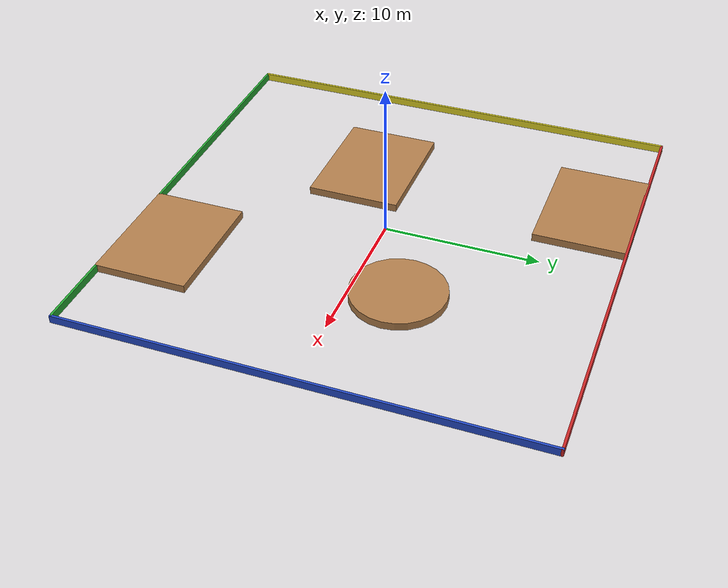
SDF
<?xml version='1.0'?>
<sdf version='1.6'>
  <model name='turtlebot3_square_large_2'>
    <pose frame=''>0 0 0 0 -0 0</pose>
    <link name='Wall_0'>
      <collision name='Wall_0_Collision'>
        <geometry>
          <box>
            <size>30 0.15 0.5</size>
          </box>
        </geometry>
        <pose frame=''>0 0 0.25 0 -0 0</pose>
      </collision>
      <visual name='Wall_0_Visual'>
        <pose frame=''>0 0 0.25 0 -0 0</pose>
        <geometry>
          <box>
            <size>30 0.15 0.5</size>
          </box>
        </geometry>
        <material>
          <script>
            <uri>file://media/materials/scripts/gazebo.material</uri>
            <name>Gazebo/Red</name>
          </script>
          <ambient>1 1 1 1</ambient>
        </material>
      </visual>
      <pose frame=''>0 14.925 0 0 -0 0</pose>
    </link>
    <link name='Wall_2'>
      <collision name='Wall_2_Collision'>
        <geometry>
          <box>
            <size>30 0.15 0.5</size>
          </box>
        </geometry>
        <pose frame=''>0 0 0.25 0 -0 0</pose>
      </collision>
      <visual name='Wall_2_Visual'>
        <pose frame=''>0 0 0.25 0 -0 0</pose>
        <geometry>
          <box>
            <size>30 0.15 0.5</size>
          </box>
        </geometry>
        <material>
          <script>
            <uri>file://media/materials/scripts/gazebo.material</uri>
            <name>Gazebo/Yellow</name>
          </script>
          <ambient>1 1 1 1</ambient>
        </material>
      </visual>
      <pose frame=''>-14.925 0 0 0 0 -1.5708</pose>
    </link>
    <link name='Wall_3'>
      <collision name='Wall_3_Collision'>
        <geometry>
          <box>
            <size>30 0.15 0.5</size>
          </box>
        </geometry>
        <pose frame=''>0 0 0.25 0 -0 0</pose>
      </collision>
      <visual name='Wall_3_Visual'>
        <pose frame=''>0 0 0.25 0 -0 0</pose>
        <geometry>
          <box>
            <size>30 0.15 0.5</size>
          </box>
        </geometry>
        <material>
          <script>
            <uri>file://media/materials/scripts/gazebo.material</uri>
            <name>Gazebo/Green</name>
          </script>
          <ambient>1 1 1 1</ambient>
        </material>
      </visual>
      <pose frame=''>0 -14.925 0 0 -0 0</pose>
    </link>
    <link name='Wall_4'>
      <collision name='Wall_4_Collision'>
        <geometry>
          <box>
            <size>30 0.15 0.5</size>
          </box>
        </geometry>
        <pose frame=''>0 0 0.25 0 -0 0</pose>
      </collision>
      <visual name='Wall_4_Visual'>
        <pose frame=''>0 0 0.25 0 -0 0</pose>
        <geometry>
          <box>
            <size>30 0.15 0.5</size>
          </box>
        </geometry>
        <material>
          <script>
            <uri>file://media/materials/scripts/gazebo.material</uri>
            <name>Gazebo/Blue</name>
          </script>
          <ambient>1 1 1 1</ambient>
        </material>
      </visual>
      <pose frame=''>14.925 0 0 0 -0 1.5708</pose>
    </link>

    <link name='box_0'>
      <collision name='Wall_0_Collision'>
        <geometry>
          <box>
            <size>8 6  0.5</size>
          </box>
        </geometry>
        <pose frame=''>0 0 0.25 0 -0 0</pose>
      </collision>
      <visual name='Wall_0_Visual'>
        <pose frame=''>0 0 0.25 0 -0 0</pose>
        <geometry>
          <box>
            <size>8 6  0.5</size>
          </box>
        </geometry>
        <material>
          <script>
            <uri>file://media/materials/scripts/gazebo.material</uri>
            <name>Gazebo/Wood</name>
          </script>
          <ambient>1 1 1 1</ambient>
        </material>
      </visual>
      <pose frame=''>-6 12 0 0 -0 0</pose>
    </link>

    <link name='box_1'>
      <collision name='Wall_0_Collision'>
        <geometry>
            <cylinder>
              <radius>3</radius>
              <length>.5</length>
            </cylinder>
        </geometry>
        <pose frame=''>0 0 0.25 0 -0 0</pose>
      </collision>
      <visual name='Wall_0_Visual'>
        <pose frame=''>0 0 0.25 0 -0 0</pose>
        <geometry>
            <cylinder>
              <radius>3</radius>
              <length>.5</length>
            </cylinder>
        </geometry>
        <material>
          <script>
            <uri>file://media/materials/scripts/gazebo.material</uri>
            <name>Gazebo/Wood</name>
          </script>
          <ambient>1 1 1 1</ambient>
        </material>
      </visual>
      <pose frame=''>6 3 0 0 -0 0</pose>
    </link>

    <link name='box_2'>
      <collision name='Wall_0_Collision'>
        <geometry>
          <box>
            <size>8 6  0.5</size>
          </box>
        </geometry>
        <pose frame=''>0 0 0.25 0 -0 0</pose>
      </collision>
      <visual name='Wall_0_Visual'>
        <pose frame=''>0 0 0.25 0 -0 0</pose>
        <geometry>
          <box>
            <size>8 6  0.5</size>
          </box>
        </geometry>
        <material>
          <script>
            <uri>file://media/materials/scripts/gazebo.material</uri>
            <name>Gazebo/Wood</name>
          </script>
          <ambient>1 1 1 1</ambient>
        </material>
      </visual>
      <pose frame=''>-6 -3 0 0 -0 0</pose>
    </link>

    <link name='box_3'>
      <collision name='Wall_0_Collision'>
        <geometry>
          <box>
            <size>8 6 0.5</size>
          </box>
        </geometry>
        <pose frame=''>0 0 0.25 0 -0 0</pose>
      </collision>
      <visual name='Wall_0_Visual'>
        <pose frame=''>0 0 0.25 0 -0 0</pose>
        <geometry>
          <box>
            <size>8 6 0.5</size>
          </box>
        </geometry>
        <material>
          <script>
            <uri>file://media/materials/scripts/gazebo.material</uri>
            <name>Gazebo/Wood</name>
          </script>
          <ambient>1 1 1 1</ambient>
        </material>
      </visual>
      <pose frame=''>6 -12 0 0 -0 0</pose>
    </link>

    <static>1</static>
  </model>
</sdf>
